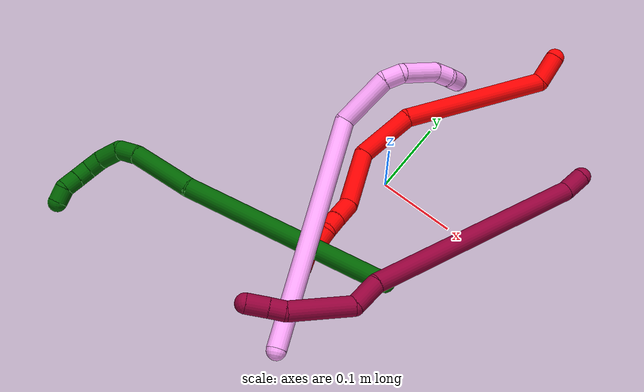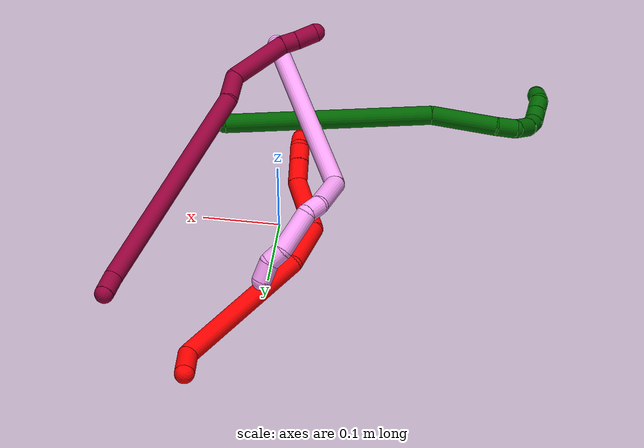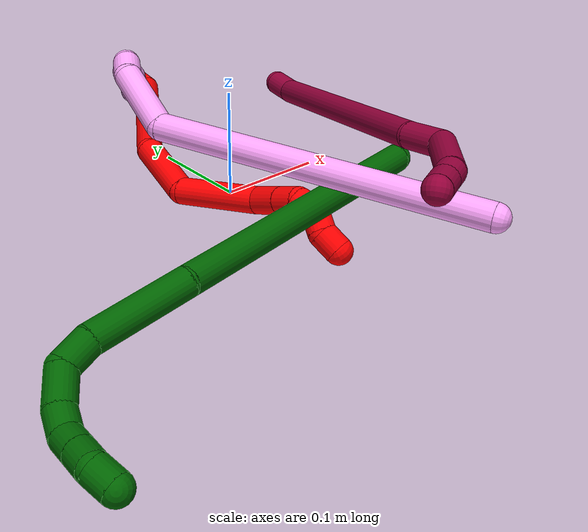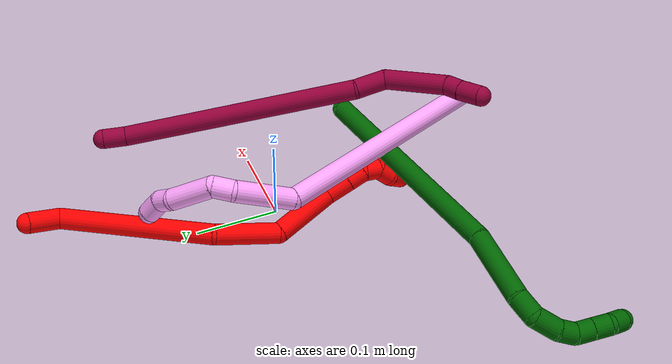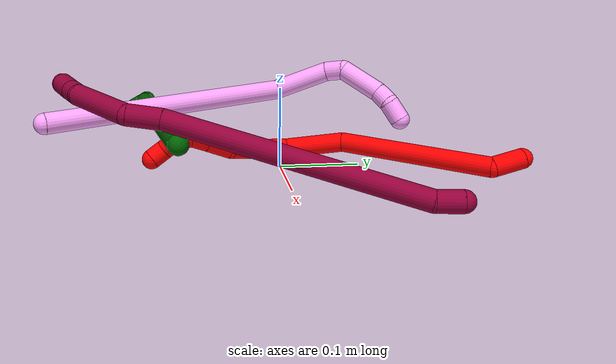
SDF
<sdf version="1.7">
 <world name="default">
  <model name="photoneo_s_sensor">
   <static>1</static>
   <pose>0 0 2 1.57079 1.57079 3.14159</pose>
   <link name="link">
    <inertial><mass>0.1</mass></inertial>
    <sensor name="sensor" type="depth">
     <update_rate>30</update_rate>
     <camera>
      <horizontal_fov>1.22</horizontal_fov>
      <image><width>1920</width><height>1200</height><format>B8G8R8</format></image>
      <clip><near>0.1</near><far>4</far></clip>
      <depth_camera><output>points</output></depth_camera>
     </camera>
     <plugin name="camera_plugin" filename="libgazebo_ros_depth_camera.so">
      <baseline>0.2</baseline>
      <alwaysOn>1</alwaysOn>
      <updateRate>0.0</updateRate>
      <cameraName>camera_ir</cameraName>
      <imageTopicName>/camera/color/image_raw</imageTopicName>
      <cameraInfoTopicName>/camera/color/camera_info</cameraInfoTopicName>
      <depthImageTopicName>/camera/depth/image_raw</depthImageTopicName>
      <depthImageCameraInfoTopicName>/camera/depth/camera_info</depthImageCameraInfoTopicName>
      <pointCloudTopicName>/camera/depth/points</pointCloudTopicName>
      <frameName>fr_optical</frameName>
      <pointCloudCutoff>0.1</pointCloudCutoff>
      <pointCloudCutoffMax>2.0</pointCloudCutoffMax>
      <distortionK1>0</distortionK1>
      <distortionK2>0</distortionK2>
      <distortionK3>0</distortionK3>
      <distortionT1>0</distortionT1>
      <distortionT2>0</distortionT2>
      <CxPrime>0</CxPrime>
      <Cx>0</Cx>
      <Cy>0</Cy>
      <focalLength>0</focalLength>
      <hackBaseline>0</hackBaseline>
     </plugin>
    </sensor>
   </link>
  </model>
  <model name="bin">
   <static>1</static>
   <link name="bottom">
    <collision name="collision-bottom">
     <pose>0 0 -0.01 0 -0 0</pose>
     <geometry><box><size>0.8 0.6 0.02</size></box></geometry>
     <surface>
      <friction><ode><mu>100</mu><mu2>100</mu2></ode></friction>
      <contact><collide_bitmask>65535</collide_bitmask></contact>
     </surface>
    </collision>
   </link>
   <link name="west_wall">
    <collision name="collision-west_wall">
     <pose>-0.41 0 0.1 0 -0 0</pose>
     <geometry><box><size>0.02 0.6 0.2</size></box></geometry>
     <surface>
      <friction><ode><mu>100</mu><mu2>100</mu2></ode></friction>
      <contact><collide_bitmask>65535</collide_bitmask></contact>
     </surface>
    </collision>
   </link>
   <link name="east_wall">
    <collision name="collision-east_wall">
     <pose>0.41 0 0.1 0 -0 0</pose>
     <geometry><box><size>0.02 0.6 0.2</size></box></geometry>
     <surface>
      <friction><ode><mu>100</mu><mu2>100</mu2></ode></friction>
      <contact><collide_bitmask>65535</collide_bitmask></contact>
     </surface>
    </collision>
   </link>
   <link name="south_wall">
    <collision name="collision-south_wall">
     <pose>0 -0.31 0.1 0 -0 0</pose>
     <geometry><box><size>0.8 0.02 0.2</size></box></geometry>
     <surface>
      <friction><ode><mu>100</mu><mu2>100</mu2></ode></friction>
      <contact><collide_bitmask>65535</collide_bitmask></contact>
     </surface>
    </collision>
   </link>
   <link name="north_wall">
    <collision name="collision-north_wall">
     <pose>0 0.31 0.1 0 -0 0</pose>
     <geometry><box><size>0.8 0.02 0.2</size></box></geometry>
     <surface>
      <friction><ode><mu>100</mu><mu2>100</mu2></ode></friction>
      <contact><collide_bitmask>65535</collide_bitmask></contact>
     </surface>
    </collision>
   </link>
  </model>
  <model name="2">
   <static>0</static>
   <link name="2">
    <collision name="collision-cylinder-e_1_1_4">
     <pose>-0.001159 -0.018499 -0.007172 1.94064 -0.058373 -0.085209</pose>
     <geometry><cylinder><radius>0.0125</radius><length>0.039749</length></cylinder></geometry>
     <surface>
      <friction><ode><mu>1.16</mu><mu2>1.16</mu2><slip1>0</slip1><slip2>0</slip2></ode></friction>
      <contact><ode><kp>1e+06</kp><kd>1</kd><max_vel>0</max_vel><min_depth>0.001</min_depth></ode></contact>
     </surface>
    </collision>
    <visual name="visual-cylinder-e_1_1_4">
     <pose>-0.001159 -0.018499 -0.007172 1.94064 -0.058373 -0.085209</pose>
     <geometry><cylinder><radius>0.0125</radius><length>0.039749</length></cylinder></geometry>
     <material><ambient>1 0 0 1</ambient></material>
    </visual>
    <collision name="collision-cylinder-e_2_4_5">
     <pose>-0.047528 -0.119012 0.004844 1.34097 -0.492606 -0.393594</pose>
     <geometry><cylinder><radius>0.0125</radius><length>0.191189</length></cylinder></geometry>
     <surface>
      <friction><ode><mu>1.16</mu><mu2>1.16</mu2><slip1>0</slip1><slip2>0</slip2></ode></friction>
      <contact><ode><kp>1e+06</kp><kd>1</kd><max_vel>0</max_vel><min_depth>0.001</min_depth></ode></contact>
     </surface>
    </collision>
    <visual name="visual-cylinder-e_2_4_5">
     <pose>-0.047528 -0.119012 0.004844 1.34097 -0.492606 -0.393594</pose>
     <geometry><cylinder><radius>0.0125</radius><length>0.191189</length></cylinder></geometry>
     <material><ambient>1 0 0 1</ambient></material>
    </visual>
    <collision name="collision-cylinder-e_3_5_6">
     <pose>-0.102846 -0.237162 0.018524 1.72207 -0.269805 -0.31338</pose>
     <geometry><cylinder><radius>0.0125</radius><length>0.075851</length></cylinder></geometry>
     <surface>
      <friction><ode><mu>1.16</mu><mu2>1.16</mu2><slip1>0</slip1><slip2>0</slip2></ode></friction>
      <contact><ode><kp>1e+06</kp><kd>1</kd><max_vel>0</max_vel><min_depth>0.001</min_depth></ode></contact>
     </surface>
    </collision>
    <visual name="visual-cylinder-e_3_5_6">
     <pose>-0.102846 -0.237162 0.018524 1.72207 -0.269805 -0.31338</pose>
     <geometry><cylinder><radius>0.0125</radius><length>0.075851</length></cylinder></geometry>
     <material><ambient>1 0 0 1</ambient></material>
    </visual>
    <collision name="collision-cylinder-e_4_6_7">
     <pose>-0.097903 -0.30947 0.004521 1.80144 0.384882 0.482248</pose>
     <geometry><cylinder><radius>0.0125</radius><length>0.080177</length></cylinder></geometry>
     <surface>
      <friction><ode><mu>1.16</mu><mu2>1.16</mu2><slip1>0</slip1><slip2>0</slip2></ode></friction>
      <contact><ode><kp>1e+06</kp><kd>1</kd><max_vel>0</max_vel><min_depth>0.001</min_depth></ode></contact>
     </surface>
    </collision>
    <visual name="visual-cylinder-e_4_6_7">
     <pose>-0.097903 -0.30947 0.004521 1.80144 0.384882 0.482248</pose>
     <geometry><cylinder><radius>0.0125</radius><length>0.080177</length></cylinder></geometry>
     <material><ambient>1 0 0 1</ambient></material>
    </visual>
    <collision name="collision-cylinder-e_5_7_8">
     <pose>-0.079674 -0.36049 -0.001798 1.4254 0.208718 0.180546</pose>
     <geometry><cylinder><radius>0.0125</radius><length>0.030679</length></cylinder></geometry>
     <surface>
      <friction><ode><mu>1.16</mu><mu2>1.16</mu2><slip1>0</slip1><slip2>0</slip2></ode></friction>
      <contact><ode><kp>1e+06</kp><kd>1</kd><max_vel>0</max_vel><min_depth>0.001</min_depth></ode></contact>
     </surface>
    </collision>
    <visual name="visual-cylinder-e_5_7_8">
     <pose>-0.079674 -0.36049 -0.001798 1.4254 0.208718 0.180546</pose>
     <geometry><cylinder><radius>0.0125</radius><length>0.030679</length></cylinder></geometry>
     <material><ambient>1 0 0 1</ambient></material>
    </visual>
    <collision name="collision-cylinder-e_6_8_9">
     <pose>-0.074063 -0.38608 0.001737 1.44471 0.220962 0.194899</pose>
     <geometry><cylinder><radius>0.0125</radius><length>0.022195</length></cylinder></geometry>
     <surface>
      <friction><ode><mu>1.16</mu><mu2>1.16</mu2><slip1>0</slip1><slip2>0</slip2></ode></friction>
      <contact><ode><kp>1e+06</kp><kd>1</kd><max_vel>0</max_vel><min_depth>0.001</min_depth></ode></contact>
     </surface>
    </collision>
    <visual name="visual-cylinder-e_6_8_9">
     <pose>-0.074063 -0.38608 0.001737 1.44471 0.220962 0.194899</pose>
     <geometry><cylinder><radius>0.0125</radius><length>0.022195</length></cylinder></geometry>
     <material><ambient>1 0 0 1</ambient></material>
    </visual>
    <collision name="collision-cylinder-e_7_9_10">
     <pose>-0.07218 -0.406458 0.000416 1.8424 -0.054888 -0.072248</pose>
     <geometry><cylinder><radius>0.0125</radius><length>0.020035</length></cylinder></geometry>
     <surface>
      <friction><ode><mu>1.16</mu><mu2>1.16</mu2><slip1>0</slip1><slip2>0</slip2></ode></friction>
      <contact><ode><kp>1e+06</kp><kd>1</kd><max_vel>0</max_vel><min_depth>0.001</min_depth></ode></contact>
     </surface>
    </collision>
    <visual name="visual-cylinder-e_7_9_10">
     <pose>-0.07218 -0.406458 0.000416 1.8424 -0.054888 -0.072248</pose>
     <geometry><cylinder><radius>0.0125</radius><length>0.020035</length></cylinder></geometry>
     <material><ambient>1 0 0 1</ambient></material>
    </visual>
    <collision name="collision-cylinder-e_8_10_11">
     <pose>-0.078014 -0.422589 -0.007746 2.27149 -0.556325 -1.10196</pose>
     <geometry><cylinder><radius>0.0125</radius><length>0.020012</length></cylinder></geometry>
     <surface>
      <friction><ode><mu>1.16</mu><mu2>1.16</mu2><slip1>0</slip1><slip2>0</slip2></ode></friction>
      <contact><ode><kp>1e+06</kp><kd>1</kd><max_vel>0</max_vel><min_depth>0.001</min_depth></ode></contact>
     </surface>
    </collision>
    <visual name="visual-cylinder-e_8_10_11">
     <pose>-0.078014 -0.422589 -0.007746 2.27149 -0.556325 -1.10196</pose>
     <geometry><cylinder><radius>0.0125</radius><length>0.020012</length></cylinder></geometry>
     <material><ambient>1 0 0 1</ambient></material>
    </visual>
    <collision name="collision-cylinder-e_9_11_2">
     <pose>-0.084307 -0.436306 -0.02015 2.33523 -0.100563 -0.234873</pose>
     <geometry><cylinder><radius>0.0125</radius><length>0.020112</length></cylinder></geometry>
     <surface>
      <friction><ode><mu>1.16</mu><mu2>1.16</mu2><slip1>0</slip1><slip2>0</slip2></ode></friction>
      <contact><ode><kp>1e+06</kp><kd>1</kd><max_vel>0</max_vel><min_depth>0.001</min_depth></ode></contact>
     </surface>
    </collision>
    <visual name="visual-cylinder-e_9_11_2">
     <pose>-0.084307 -0.436306 -0.02015 2.33523 -0.100563 -0.234873</pose>
     <geometry><cylinder><radius>0.0125</radius><length>0.020112</length></cylinder></geometry>
     <material><ambient>1 0 0 1</ambient></material>
    </visual>
    <collision name="collision-sphere-2">
     <pose>-0.085317 -0.443527 -0.027075 0 -0 0</pose>
     <geometry><sphere><radius>0.0125</radius></sphere></geometry>
     <surface>
      <friction><ode><mu>1.16</mu><mu2>1.16</mu2><slip1>0</slip1><slip2>0</slip2></ode></friction>
      <contact><ode><kp>1e+06</kp><kd>1</kd><max_vel>0</max_vel><min_depth>0.001</min_depth></ode></contact>
     </surface>
    </collision>
    <visual name="visual-sphere-2">
     <pose>-0.085317 -0.443527 -0.027075 0 -0 0</pose>
     <geometry><sphere><radius>0.0125</radius></sphere></geometry>
     <material><ambient>1 0 0 1</ambient></material>
    </visual>
    <collision name="collision-sphere-11">
     <pose>-0.083298 -0.429084 -0.013225 0 -0 0</pose>
     <geometry><sphere><radius>0.0125</radius></sphere></geometry>
     <surface>
      <friction><ode><mu>1.16</mu><mu2>1.16</mu2><slip1>0</slip1><slip2>0</slip2></ode></friction>
      <contact><ode><kp>1e+06</kp><kd>1</kd><max_vel>0</max_vel><min_depth>0.001</min_depth></ode></contact>
     </surface>
    </collision>
    <visual name="visual-sphere-11">
     <pose>-0.083298 -0.429084 -0.013225 0 -0 0</pose>
     <geometry><sphere><radius>0.0125</radius></sphere></geometry>
     <material><ambient>1 0 0 1</ambient></material>
    </visual>
    <collision name="collision-sphere-10">
     <pose>-0.07273 -0.416093 -0.002268 0 -0 0</pose>
     <geometry><sphere><radius>0.0125</radius></sphere></geometry>
     <surface>
      <friction><ode><mu>1.16</mu><mu2>1.16</mu2><slip1>0</slip1><slip2>0</slip2></ode></friction>
      <contact><ode><kp>1e+06</kp><kd>1</kd><max_vel>0</max_vel><min_depth>0.001</min_depth></ode></contact>
     </surface>
    </collision>
    <visual name="visual-sphere-10">
     <pose>-0.07273 -0.416093 -0.002268 0 -0 0</pose>
     <geometry><sphere><radius>0.0125</radius></sphere></geometry>
     <material><ambient>1 0 0 1</ambient></material>
    </visual>
    <collision name="collision-sphere-9">
     <pose>-0.071631 -0.396822 0.003099 0 -0 0</pose>
     <geometry><sphere><radius>0.0125</radius></sphere></geometry>
     <surface>
      <friction><ode><mu>1.16</mu><mu2>1.16</mu2><slip1>0</slip1><slip2>0</slip2></ode></friction>
      <contact><ode><kp>1e+06</kp><kd>1</kd><max_vel>0</max_vel><min_depth>0.001</min_depth></ode></contact>
     </surface>
    </collision>
    <visual name="visual-sphere-9">
     <pose>-0.071631 -0.396822 0.003099 0 -0 0</pose>
     <geometry><sphere><radius>0.0125</radius></sphere></geometry>
     <material><ambient>1 0 0 1</ambient></material>
    </visual>
    <collision name="collision-sphere-4">
     <pose>-0.002319 -0.036998 -0.014344 0 -0 0</pose>
     <geometry><sphere><radius>0.0125</radius></sphere></geometry>
     <surface>
      <friction><ode><mu>1.16</mu><mu2>1.16</mu2><slip1>0</slip1><slip2>0</slip2></ode></friction>
      <contact><ode><kp>1e+06</kp><kd>1</kd><max_vel>0</max_vel><min_depth>0.001</min_depth></ode></contact>
     </surface>
    </collision>
    <visual name="visual-sphere-4">
     <pose>-0.002319 -0.036998 -0.014344 0 -0 0</pose>
     <geometry><sphere><radius>0.0125</radius></sphere></geometry>
     <material><ambient>1 0 0 1</ambient></material>
    </visual>
    <collision name="collision-sphere-1">
     <geometry><sphere><radius>0.0125</radius></sphere></geometry>
     <surface>
      <friction><ode><mu>1.16</mu><mu2>1.16</mu2><slip1>0</slip1><slip2>0</slip2></ode></friction>
      <contact><ode><kp>1e+06</kp><kd>1</kd><max_vel>0</max_vel><min_depth>0.001</min_depth></ode></contact>
     </surface>
    </collision>
    <visual name="visual-sphere-1">
     <geometry><sphere><radius>0.0125</radius></sphere></geometry>
     <material><ambient>1 0 0 1</ambient></material>
    </visual>
    <collision name="collision-sphere-8">
     <pose>-0.076495 -0.375339 0.000376 0 -0 0</pose>
     <geometry><sphere><radius>0.0125</radius></sphere></geometry>
     <surface>
      <friction><ode><mu>1.16</mu><mu2>1.16</mu2><slip1>0</slip1><slip2>0</slip2></ode></friction>
      <contact><ode><kp>1e+06</kp><kd>1</kd><max_vel>0</max_vel><min_depth>0.001</min_depth></ode></contact>
     </surface>
    </collision>
    <visual name="visual-sphere-8">
     <pose>-0.076495 -0.375339 0.000376 0 -0 0</pose>
     <geometry><sphere><radius>0.0125</radius></sphere></geometry>
     <material><ambient>1 0 0 1</ambient></material>
    </visual>
    <collision name="collision-sphere-5">
     <pose>-0.092737 -0.201026 0.024032 0 -0 0</pose>
     <geometry><sphere><radius>0.0125</radius></sphere></geometry>
     <surface>
      <friction><ode><mu>1.16</mu><mu2>1.16</mu2><slip1>0</slip1><slip2>0</slip2></ode></friction>
      <contact><ode><kp>1e+06</kp><kd>1</kd><max_vel>0</max_vel><min_depth>0.001</min_depth></ode></contact>
     </surface>
    </collision>
    <visual name="visual-sphere-5">
     <pose>-0.092737 -0.201026 0.024032 0 -0 0</pose>
     <geometry><sphere><radius>0.0125</radius></sphere></geometry>
     <material><ambient>1 0 0 1</ambient></material>
    </visual>
    <collision name="collision-sphere-6">
     <pose>-0.112955 -0.273298 0.013015 0 -0 0</pose>
     <geometry><sphere><radius>0.0125</radius></sphere></geometry>
     <surface>
      <friction><ode><mu>1.16</mu><mu2>1.16</mu2><slip1>0</slip1><slip2>0</slip2></ode></friction>
      <contact><ode><kp>1e+06</kp><kd>1</kd><max_vel>0</max_vel><min_depth>0.001</min_depth></ode></contact>
     </surface>
    </collision>
    <visual name="visual-sphere-6">
     <pose>-0.112955 -0.273298 0.013015 0 -0 0</pose>
     <geometry><sphere><radius>0.0125</radius></sphere></geometry>
     <material><ambient>1 0 0 1</ambient></material>
    </visual>
    <collision name="collision-sphere-7">
     <pose>-0.082852 -0.345642 -0.003973 0 -0 0</pose>
     <geometry><sphere><radius>0.0125</radius></sphere></geometry>
     <surface>
      <friction><ode><mu>1.16</mu><mu2>1.16</mu2><slip1>0</slip1><slip2>0</slip2></ode></friction>
      <contact><ode><kp>1e+06</kp><kd>1</kd><max_vel>0</max_vel><min_depth>0.001</min_depth></ode></contact>
     </surface>
    </collision>
    <visual name="visual-sphere-7">
     <pose>-0.082852 -0.345642 -0.003973 0 -0 0</pose>
     <geometry><sphere><radius>0.0125</radius></sphere></geometry>
     <material><ambient>1 0 0 1</ambient></material>
    </visual>
    <inertial>
     <pose>-0.067149 -0.222589 0.00368 0 -0 0</pose>
     <mass>0.5</mass>
     <inertia><ixx>0.00037</ixx><ixy>0</ixy><ixz>0</ixz><iyy>-5e-06</iyy><iyz>0</iyz><izz>0.00087</izz></inertia>
    </inertial>
   </link>
   <pose>0.072074 0.284466 0.020399 -0.143994 -0.503778 0.020752</pose>
  </model>
  <model name="4">
   <static>0</static>
   <link name="4">
    <collision name="collision-cylinder-e_1_1_4">
     <pose>-0.008053 0.013584 0.151103 -0.089661 -0.053033 0.00238</pose>
     <geometry><cylinder><radius>0.0125</radius><length>0.303851</length></cylinder></geometry>
     <surface>
      <friction><ode><mu>1.16</mu><mu2>1.16</mu2><slip1>0</slip1><slip2>0</slip2></ode></friction>
      <contact><ode><kp>1e+06</kp><kd>1</kd><max_vel>0</max_vel><min_depth>0.001</min_depth></ode></contact>
     </surface>
    </collision>
    <visual name="visual-cylinder-e_1_1_4">
     <pose>-0.008053 0.013584 0.151103 -0.089661 -0.053033 0.00238</pose>
     <geometry><cylinder><radius>0.0125</radius><length>0.303851</length></cylinder></geometry>
     <material><ambient>1 0.65098 0.996078 1</ambient></material>
    </visual>
    <collision name="collision-cylinder-e_2_4_5">
     <pose>-0.00258 0.044665 0.330073 -0.560609 0.39003 -0.113607</pose>
     <geometry><cylinder><radius>0.0125</radius><length>0.071154</length></cylinder></geometry>
     <surface>
      <friction><ode><mu>1.16</mu><mu2>1.16</mu2><slip1>0</slip1><slip2>0</slip2></ode></friction>
      <contact><ode><kp>1e+06</kp><kd>1</kd><max_vel>0</max_vel><min_depth>0.001</min_depth></ode></contact>
     </surface>
    </collision>
    <visual name="visual-cylinder-e_2_4_5">
     <pose>-0.00258 0.044665 0.330073 -0.560609 0.39003 -0.113607</pose>
     <geometry><cylinder><radius>0.0125</radius><length>0.071154</length></cylinder></geometry>
     <material><ambient>1 0.65098 0.996078 1</ambient></material>
    </visual>
    <collision name="collision-cylinder-e_3_5_6">
     <pose>0.014028 0.071757 0.36429 -0.986395 0.261564 -0.141163</pose>
     <geometry><cylinder><radius>0.0125</radius><length>0.023823</length></cylinder></geometry>
     <surface>
      <friction><ode><mu>1.16</mu><mu2>1.16</mu2><slip1>0</slip1><slip2>0</slip2></ode></friction>
      <contact><ode><kp>1e+06</kp><kd>1</kd><max_vel>0</max_vel><min_depth>0.001</min_depth></ode></contact>
     </surface>
    </collision>
    <visual name="visual-cylinder-e_3_5_6">
     <pose>0.014028 0.071757 0.36429 -0.986395 0.261564 -0.141163</pose>
     <geometry><cylinder><radius>0.0125</radius><length>0.023823</length></cylinder></geometry>
     <material><ambient>1 0.65098 0.996078 1</ambient></material>
    </visual>
    <collision name="collision-cylinder-e_4_6_7">
     <pose>0.007348 0.104304 0.381659 -1.12312 -0.366054 0.231856</pose>
     <geometry><cylinder><radius>0.0125</radius><length>0.054532</length></cylinder></geometry>
     <surface>
      <friction><ode><mu>1.16</mu><mu2>1.16</mu2><slip1>0</slip1><slip2>0</slip2></ode></friction>
      <contact><ode><kp>1e+06</kp><kd>1</kd><max_vel>0</max_vel><min_depth>0.001</min_depth></ode></contact>
     </surface>
    </collision>
    <visual name="visual-cylinder-e_4_6_7">
     <pose>0.007348 0.104304 0.381659 -1.12312 -0.366054 0.231856</pose>
     <geometry><cylinder><radius>0.0125</radius><length>0.054532</length></cylinder></geometry>
     <material><ambient>1 0.65098 0.996078 1</ambient></material>
    </visual>
    <collision name="collision-cylinder-e_5_7_8">
     <pose>-0.00609 0.13707 0.393221 -1.51566 -0.358134 0.339288</pose>
     <geometry><cylinder><radius>0.0125</radius><length>0.020992</length></cylinder></geometry>
     <surface>
      <friction><ode><mu>1.16</mu><mu2>1.16</mu2><slip1>0</slip1><slip2>0</slip2></ode></friction>
      <contact><ode><kp>1e+06</kp><kd>1</kd><max_vel>0</max_vel><min_depth>0.001</min_depth></ode></contact>
     </surface>
    </collision>
    <visual name="visual-cylinder-e_5_7_8">
     <pose>-0.00609 0.13707 0.393221 -1.51566 -0.358134 0.339288</pose>
     <geometry><cylinder><radius>0.0125</radius><length>0.020992</length></cylinder></geometry>
     <material><ambient>1 0.65098 0.996078 1</ambient></material>
    </visual>
    <collision name="collision-cylinder-e_6_8_2">
     <pose>-0.018841 0.155567 0.396367 -1.2794 -0.785818 0.598274</pose>
     <geometry><cylinder><radius>0.0125</radius><length>0.025648</length></cylinder></geometry>
     <surface>
      <friction><ode><mu>1.16</mu><mu2>1.16</mu2><slip1>0</slip1><slip2>0</slip2></ode></friction>
      <contact><ode><kp>1e+06</kp><kd>1</kd><max_vel>0</max_vel><min_depth>0.001</min_depth></ode></contact>
     </surface>
    </collision>
    <visual name="visual-cylinder-e_6_8_2">
     <pose>-0.018841 0.155567 0.396367 -1.2794 -0.785818 0.598274</pose>
     <geometry><cylinder><radius>0.0125</radius><length>0.025648</length></cylinder></geometry>
     <material><ambient>1 0.65098 0.996078 1</ambient></material>
    </visual>
    <collision name="collision-sphere-2">
     <pose>-0.027913 0.164249 0.398971 0 -0 0</pose>
     <geometry><sphere><radius>0.0125</radius></sphere></geometry>
     <surface>
      <friction><ode><mu>1.16</mu><mu2>1.16</mu2><slip1>0</slip1><slip2>0</slip2></ode></friction>
      <contact><ode><kp>1e+06</kp><kd>1</kd><max_vel>0</max_vel><min_depth>0.001</min_depth></ode></contact>
     </surface>
    </collision>
    <visual name="visual-sphere-2">
     <pose>-0.027913 0.164249 0.398971 0 -0 0</pose>
     <geometry><sphere><radius>0.0125</radius></sphere></geometry>
     <material><ambient>1 0.65098 0.996078 1</ambient></material>
    </visual>
    <collision name="collision-sphere-4">
     <pose>-0.016107 0.027169 0.302205 0 -0 0</pose>
     <geometry><sphere><radius>0.0125</radius></sphere></geometry>
     <surface>
      <friction><ode><mu>1.16</mu><mu2>1.16</mu2><slip1>0</slip1><slip2>0</slip2></ode></friction>
      <contact><ode><kp>1e+06</kp><kd>1</kd><max_vel>0</max_vel><min_depth>0.001</min_depth></ode></contact>
     </surface>
    </collision>
    <visual name="visual-sphere-4">
     <pose>-0.016107 0.027169 0.302205 0 -0 0</pose>
     <geometry><sphere><radius>0.0125</radius></sphere></geometry>
     <material><ambient>1 0.65098 0.996078 1</ambient></material>
    </visual>
    <collision name="collision-sphere-1">
     <geometry><sphere><radius>0.0125</radius></sphere></geometry>
     <surface>
      <friction><ode><mu>1.16</mu><mu2>1.16</mu2><slip1>0</slip1><slip2>0</slip2></ode></friction>
      <contact><ode><kp>1e+06</kp><kd>1</kd><max_vel>0</max_vel><min_depth>0.001</min_depth></ode></contact>
     </surface>
    </collision>
    <visual name="visual-sphere-1">
     <geometry><sphere><radius>0.0125</radius></sphere></geometry>
     <material><ambient>1 0.65098 0.996078 1</ambient></material>
    </visual>
    <collision name="collision-sphere-8">
     <pose>-0.009769 0.146885 0.393763 0 -0 0</pose>
     <geometry><sphere><radius>0.0125</radius></sphere></geometry>
     <surface>
      <friction><ode><mu>1.16</mu><mu2>1.16</mu2><slip1>0</slip1><slip2>0</slip2></ode></friction>
      <contact><ode><kp>1e+06</kp><kd>1</kd><max_vel>0</max_vel><min_depth>0.001</min_depth></ode></contact>
     </surface>
    </collision>
    <visual name="visual-sphere-8">
     <pose>-0.009769 0.146885 0.393763 0 -0 0</pose>
     <geometry><sphere><radius>0.0125</radius></sphere></geometry>
     <material><ambient>1 0.65098 0.996078 1</ambient></material>
    </visual>
    <collision name="collision-sphere-5">
     <pose>0.010947 0.06216 0.357942 0 -0 0</pose>
     <geometry><sphere><radius>0.0125</radius></sphere></geometry>
     <surface>
      <friction><ode><mu>1.16</mu><mu2>1.16</mu2><slip1>0</slip1><slip2>0</slip2></ode></friction>
      <contact><ode><kp>1e+06</kp><kd>1</kd><max_vel>0</max_vel><min_depth>0.001</min_depth></ode></contact>
     </surface>
    </collision>
    <visual name="visual-sphere-5">
     <pose>0.010947 0.06216 0.357942 0 -0 0</pose>
     <geometry><sphere><radius>0.0125</radius></sphere></geometry>
     <material><ambient>1 0.65098 0.996078 1</ambient></material>
    </visual>
    <collision name="collision-sphere-6">
     <pose>0.017108 0.081354 0.370638 0 -0 0</pose>
     <geometry><sphere><radius>0.0125</radius></sphere></geometry>
     <surface>
      <friction><ode><mu>1.16</mu><mu2>1.16</mu2><slip1>0</slip1><slip2>0</slip2></ode></friction>
      <contact><ode><kp>1e+06</kp><kd>1</kd><max_vel>0</max_vel><min_depth>0.001</min_depth></ode></contact>
     </surface>
    </collision>
    <visual name="visual-sphere-6">
     <pose>0.017108 0.081354 0.370638 0 -0 0</pose>
     <geometry><sphere><radius>0.0125</radius></sphere></geometry>
     <material><ambient>1 0.65098 0.996078 1</ambient></material>
    </visual>
    <collision name="collision-sphere-7">
     <pose>-0.002411 0.127255 0.39268 0 -0 0</pose>
     <geometry><sphere><radius>0.0125</radius></sphere></geometry>
     <surface>
      <friction><ode><mu>1.16</mu><mu2>1.16</mu2><slip1>0</slip1><slip2>0</slip2></ode></friction>
      <contact><ode><kp>1e+06</kp><kd>1</kd><max_vel>0</max_vel><min_depth>0.001</min_depth></ode></contact>
     </surface>
    </collision>
    <visual name="visual-sphere-7">
     <pose>-0.002411 0.127255 0.39268 0 -0 0</pose>
     <geometry><sphere><radius>0.0125</radius></sphere></geometry>
     <material><ambient>1 0.65098 0.996078 1</ambient></material>
    </visual>
    <inertial>
     <pose>-0.005013 0.043141 0.234621 0 -0 0</pose>
     <mass>0.5</mass>
     <inertia><ixx>0.0024</ixx><ixy>0</ixy><ixz>0</ixz><iyy>0.002399</iyy><iyz>0</iyz><izz>-9.4e-05</izz></inertia>
    </inertial>
   </link>
   <pose>0.04348 -0.275387 0.071562 -1.0725 -1.3168 -0.015001</pose>
  </model>
  <model name="6">
   <static>0</static>
   <link name="6">
    <collision name="collision-cylinder-e_1_1_4">
     <pose>-0.112915 -0.0233 0.073474 0.307092 -0.971819 -0.163114</pose>
     <geometry><cylinder><radius>0.0125</radius><length>0.273431</length></cylinder></geometry>
     <surface>
      <friction><ode><mu>1.16</mu><mu2>1.16</mu2><slip1>0</slip1><slip2>0</slip2></ode></friction>
      <contact><ode><kp>1e+06</kp><kd>1</kd><max_vel>0</max_vel><min_depth>0.001</min_depth></ode></contact>
     </surface>
    </collision>
    <visual name="visual-cylinder-e_1_1_4">
     <pose>-0.112915 -0.0233 0.073474 0.307092 -0.971819 -0.163114</pose>
     <geometry><cylinder><radius>0.0125</radius><length>0.273431</length></cylinder></geometry>
     <material><ambient>0 0.392157 0.003922 1</ambient></material>
    </visual>
    <collision name="collision-cylinder-e_2_4_5">
     <pose>-0.265825 -0.054964 0.16208 0.50491 -1.16276 -0.335837</pose>
     <geometry><cylinder><radius>0.0125</radius><length>0.087145</length></cylinder></geometry>
     <surface>
      <friction><ode><mu>1.16</mu><mu2>1.16</mu2><slip1>0</slip1><slip2>0</slip2></ode></friction>
      <contact><ode><kp>1e+06</kp><kd>1</kd><max_vel>0</max_vel><min_depth>0.001</min_depth></ode></contact>
     </surface>
    </collision>
    <visual name="visual-cylinder-e_2_4_5">
     <pose>-0.265825 -0.054964 0.16208 0.50491 -1.16276 -0.335837</pose>
     <geometry><cylinder><radius>0.0125</radius><length>0.087145</length></cylinder></geometry>
     <material><ambient>0 0.392157 0.003922 1</ambient></material>
    </visual>
    <collision name="collision-cylinder-e_3_5_6">
     <pose>-0.317078 -0.069047 0.182779 0.798917 -0.95413 -0.429677</pose>
     <geometry><cylinder><radius>0.0125</radius><length>0.027598</length></cylinder></geometry>
     <surface>
      <friction><ode><mu>1.16</mu><mu2>1.16</mu2><slip1>0</slip1><slip2>0</slip2></ode></friction>
      <contact><ode><kp>1e+06</kp><kd>1</kd><max_vel>0</max_vel><min_depth>0.001</min_depth></ode></contact>
     </surface>
    </collision>
    <visual name="visual-cylinder-e_3_5_6">
     <pose>-0.317078 -0.069047 0.182779 0.798917 -0.95413 -0.429677</pose>
     <geometry><cylinder><radius>0.0125</radius><length>0.027598</length></cylinder></geometry>
     <material><ambient>0 0.392157 0.003922 1</ambient></material>
    </visual>
    <collision name="collision-cylinder-e_4_6_7">
     <pose>-0.333125 -0.087355 0.195449 1.05708 -0.319922 -0.187877</pose>
     <geometry><cylinder><radius>0.0125</radius><length>0.030457</length></cylinder></geometry>
     <surface>
      <friction><ode><mu>1.16</mu><mu2>1.16</mu2><slip1>0</slip1><slip2>0</slip2></ode></friction>
      <contact><ode><kp>1e+06</kp><kd>1</kd><max_vel>0</max_vel><min_depth>0.001</min_depth></ode></contact>
     </surface>
    </collision>
    <visual name="visual-cylinder-e_4_6_7">
     <pose>-0.333125 -0.087355 0.195449 1.05708 -0.319922 -0.187877</pose>
     <geometry><cylinder><radius>0.0125</radius><length>0.030457</length></cylinder></geometry>
     <material><ambient>0 0.392157 0.003922 1</ambient></material>
    </visual>
    <collision name="collision-cylinder-e_5_7_8">
     <pose>-0.33832 -0.108519 0.208553 0.960193 -0.038777 -0.020194</pose>
     <geometry><cylinder><radius>0.0125</radius><length>0.020945</length></cylinder></geometry>
     <surface>
      <friction><ode><mu>1.16</mu><mu2>1.16</mu2><slip1>0</slip1><slip2>0</slip2></ode></friction>
      <contact><ode><kp>1e+06</kp><kd>1</kd><max_vel>0</max_vel><min_depth>0.001</min_depth></ode></contact>
     </surface>
    </collision>
    <visual name="visual-cylinder-e_5_7_8">
     <pose>-0.33832 -0.108519 0.208553 0.960193 -0.038777 -0.020194</pose>
     <geometry><cylinder><radius>0.0125</radius><length>0.020945</length></cylinder></geometry>
     <material><ambient>0 0.392157 0.003922 1</ambient></material>
    </visual>
    <collision name="collision-cylinder-e_6_8_9">
     <pose>-0.335984 -0.12245 0.222619 0.586329 0.275896 0.083766</pose>
     <geometry><cylinder><radius>0.0125</radius><length>0.020128</length></cylinder></geometry>
     <surface>
      <friction><ode><mu>1.16</mu><mu2>1.16</mu2><slip1>0</slip1><slip2>0</slip2></ode></friction>
      <contact><ode><kp>1e+06</kp><kd>1</kd><max_vel>0</max_vel><min_depth>0.001</min_depth></ode></contact>
     </surface>
    </collision>
    <visual name="visual-cylinder-e_6_8_9">
     <pose>-0.335984 -0.12245 0.222619 0.586329 0.275896 0.083766</pose>
     <geometry><cylinder><radius>0.0125</radius><length>0.020128</length></cylinder></geometry>
     <material><ambient>0 0.392157 0.003922 1</ambient></material>
    </visual>
    <collision name="collision-cylinder-e_7_9_10">
     <pose>-0.33058 -0.133074 0.238812 0.57491 0.268341 0.07977</pose>
     <geometry><cylinder><radius>0.0125</radius><length>0.020089</length></cylinder></geometry>
     <surface>
      <friction><ode><mu>1.16</mu><mu2>1.16</mu2><slip1>0</slip1><slip2>0</slip2></ode></friction>
      <contact><ode><kp>1e+06</kp><kd>1</kd><max_vel>0</max_vel><min_depth>0.001</min_depth></ode></contact>
     </surface>
    </collision>
    <visual name="visual-cylinder-e_7_9_10">
     <pose>-0.33058 -0.133074 0.238812 0.57491 0.268341 0.07977</pose>
     <geometry><cylinder><radius>0.0125</radius><length>0.020089</length></cylinder></geometry>
     <material><ambient>0 0.392157 0.003922 1</ambient></material>
    </visual>
    <collision name="collision-cylinder-e_8_10_2">
     <pose>-0.323174 -0.146146 0.251261 1.06528 0.488655 0.291831</pose>
     <geometry><cylinder><radius>0.0125</radius><length>0.020208</length></cylinder></geometry>
     <surface>
      <friction><ode><mu>1.16</mu><mu2>1.16</mu2><slip1>0</slip1><slip2>0</slip2></ode></friction>
      <contact><ode><kp>1e+06</kp><kd>1</kd><max_vel>0</max_vel><min_depth>0.001</min_depth></ode></contact>
     </surface>
    </collision>
    <visual name="visual-cylinder-e_8_10_2">
     <pose>-0.323174 -0.146146 0.251261 1.06528 0.488655 0.291831</pose>
     <geometry><cylinder><radius>0.0125</radius><length>0.020208</length></cylinder></geometry>
     <material><ambient>0 0.392157 0.003922 1</ambient></material>
    </visual>
    <collision name="collision-sphere-2">
     <pose>-0.318431 -0.153952 0.255581 0 -0 0</pose>
     <geometry><sphere><radius>0.0125</radius></sphere></geometry>
     <surface>
      <friction><ode><mu>1.16</mu><mu2>1.16</mu2><slip1>0</slip1><slip2>0</slip2></ode></friction>
      <contact><ode><kp>1e+06</kp><kd>1</kd><max_vel>0</max_vel><min_depth>0.001</min_depth></ode></contact>
     </surface>
    </collision>
    <visual name="visual-sphere-2">
     <pose>-0.318431 -0.153952 0.255581 0 -0 0</pose>
     <geometry><sphere><radius>0.0125</radius></sphere></geometry>
     <material><ambient>0 0.392157 0.003922 1</ambient></material>
    </visual>
    <collision name="collision-sphere-10">
     <pose>-0.327917 -0.138341 0.24694 0 -0 0</pose>
     <geometry><sphere><radius>0.0125</radius></sphere></geometry>
     <surface>
      <friction><ode><mu>1.16</mu><mu2>1.16</mu2><slip1>0</slip1><slip2>0</slip2></ode></friction>
      <contact><ode><kp>1e+06</kp><kd>1</kd><max_vel>0</max_vel><min_depth>0.001</min_depth></ode></contact>
     </surface>
    </collision>
    <visual name="visual-sphere-10">
     <pose>-0.327917 -0.138341 0.24694 0 -0 0</pose>
     <geometry><sphere><radius>0.0125</radius></sphere></geometry>
     <material><ambient>0 0.392157 0.003922 1</ambient></material>
    </visual>
    <collision name="collision-sphere-9">
     <pose>-0.333243 -0.127808 0.230684 0 -0 0</pose>
     <geometry><sphere><radius>0.0125</radius></sphere></geometry>
     <surface>
      <friction><ode><mu>1.16</mu><mu2>1.16</mu2><slip1>0</slip1><slip2>0</slip2></ode></friction>
      <contact><ode><kp>1e+06</kp><kd>1</kd><max_vel>0</max_vel><min_depth>0.001</min_depth></ode></contact>
     </surface>
    </collision>
    <visual name="visual-sphere-9">
     <pose>-0.333243 -0.127808 0.230684 0 -0 0</pose>
     <geometry><sphere><radius>0.0125</radius></sphere></geometry>
     <material><ambient>0 0.392157 0.003922 1</ambient></material>
    </visual>
    <collision name="collision-sphere-4">
     <pose>-0.22583 -0.046601 0.146948 0 -0 0</pose>
     <geometry><sphere><radius>0.0125</radius></sphere></geometry>
     <surface>
      <friction><ode><mu>1.16</mu><mu2>1.16</mu2><slip1>0</slip1><slip2>0</slip2></ode></friction>
      <contact><ode><kp>1e+06</kp><kd>1</kd><max_vel>0</max_vel><min_depth>0.001</min_depth></ode></contact>
     </surface>
    </collision>
    <visual name="visual-sphere-4">
     <pose>-0.22583 -0.046601 0.146948 0 -0 0</pose>
     <geometry><sphere><radius>0.0125</radius></sphere></geometry>
     <material><ambient>0 0.392157 0.003922 1</ambient></material>
    </visual>
    <collision name="collision-sphere-1">
     <geometry><sphere><radius>0.0125</radius></sphere></geometry>
     <surface>
      <friction><ode><mu>1.16</mu><mu2>1.16</mu2><slip1>0</slip1><slip2>0</slip2></ode></friction>
      <contact><ode><kp>1e+06</kp><kd>1</kd><max_vel>0</max_vel><min_depth>0.001</min_depth></ode></contact>
     </surface>
    </collision>
    <visual name="visual-sphere-1">
     <geometry><sphere><radius>0.0125</radius></sphere></geometry>
     <material><ambient>0 0.392157 0.003922 1</ambient></material>
    </visual>
    <collision name="collision-sphere-8">
     <pose>-0.338726 -0.117093 0.214553 0 -0 0</pose>
     <geometry><sphere><radius>0.0125</radius></sphere></geometry>
     <surface>
      <friction><ode><mu>1.16</mu><mu2>1.16</mu2><slip1>0</slip1><slip2>0</slip2></ode></friction>
      <contact><ode><kp>1e+06</kp><kd>1</kd><max_vel>0</max_vel><min_depth>0.001</min_depth></ode></contact>
     </surface>
    </collision>
    <visual name="visual-sphere-8">
     <pose>-0.338726 -0.117093 0.214553 0 -0 0</pose>
     <geometry><sphere><radius>0.0125</radius></sphere></geometry>
     <material><ambient>0 0.392157 0.003922 1</ambient></material>
    </visual>
    <collision name="collision-sphere-5">
     <pose>-0.305821 -0.063328 0.177213 0 -0 0</pose>
     <geometry><sphere><radius>0.0125</radius></sphere></geometry>
     <surface>
      <friction><ode><mu>1.16</mu><mu2>1.16</mu2><slip1>0</slip1><slip2>0</slip2></ode></friction>
      <contact><ode><kp>1e+06</kp><kd>1</kd><max_vel>0</max_vel><min_depth>0.001</min_depth></ode></contact>
     </surface>
    </collision>
    <visual name="visual-sphere-5">
     <pose>-0.305821 -0.063328 0.177213 0 -0 0</pose>
     <geometry><sphere><radius>0.0125</radius></sphere></geometry>
     <material><ambient>0 0.392157 0.003922 1</ambient></material>
    </visual>
    <collision name="collision-sphere-6">
     <pose>-0.328335 -0.074765 0.188345 0 -0 0</pose>
     <geometry><sphere><radius>0.0125</radius></sphere></geometry>
     <surface>
      <friction><ode><mu>1.16</mu><mu2>1.16</mu2><slip1>0</slip1><slip2>0</slip2></ode></friction>
      <contact><ode><kp>1e+06</kp><kd>1</kd><max_vel>0</max_vel><min_depth>0.001</min_depth></ode></contact>
     </surface>
    </collision>
    <visual name="visual-sphere-6">
     <pose>-0.328335 -0.074765 0.188345 0 -0 0</pose>
     <geometry><sphere><radius>0.0125</radius></sphere></geometry>
     <material><ambient>0 0.392157 0.003922 1</ambient></material>
    </visual>
    <collision name="collision-sphere-7">
     <pose>-0.337914 -0.099945 0.202553 0 -0 0</pose>
     <geometry><sphere><radius>0.0125</radius></sphere></geometry>
     <surface>
      <friction><ode><mu>1.16</mu><mu2>1.16</mu2><slip1>0</slip1><slip2>0</slip2></ode></friction>
      <contact><ode><kp>1e+06</kp><kd>1</kd><max_vel>0</max_vel><min_depth>0.001</min_depth></ode></contact>
     </surface>
    </collision>
    <visual name="visual-sphere-7">
     <pose>-0.337914 -0.099945 0.202553 0 -0 0</pose>
     <geometry><sphere><radius>0.0125</radius></sphere></geometry>
     <material><ambient>0 0.392157 0.003922 1</ambient></material>
    </visual>
    <inertial>
     <pose>-0.199913 -0.052182 0.127871 0 -0 0</pose>
     <mass>0.5</mass>
     <inertia>
      <ixx>0.000796</ixx>
      <ixy>0</ixy>
      <ixz>0</ixz>
      <iyy>0.00157</iyy>
      <iyz>0</iyz>
      <izz>0.001803</izz>
     </inertia>
    </inertial>
   </link>
   <pose>0.089963 -0.125517 0.054132 0.959924 -0.19827 -0.380429</pose>
  </model>
  <model name="8">
   <static>0</static>
   <link name="8">
    <collision name="collision-cylinder-e_1_1_4">
     <pose>0.000119 -0.013364 -0.006427 2.01903 0.008024 0.012762</pose>
     <geometry><cylinder><radius>0.0125</radius><length>0.02966</length></cylinder></geometry>
     <surface>
      <friction><ode><mu>1.16</mu><mu2>1.16</mu2><slip1>0</slip1><slip2>0</slip2></ode></friction>
      <contact><ode><kp>1e+06</kp><kd>1</kd><max_vel>0</max_vel><min_depth>0.001</min_depth></ode></contact>
     </surface>
    </collision>
    <visual name="visual-cylinder-e_1_1_4">
     <pose>0.000119 -0.013364 -0.006427 2.01903 0.008024 0.012762</pose>
     <geometry><cylinder><radius>0.0125</radius><length>0.02966</length></cylinder></geometry>
     <material><ambient>0.584314 0 0.227451 1</ambient></material>
    </visual>
    <collision name="collision-cylinder-e_2_4_5">
     <pose>-0.040282 -0.164121 -0.058532 1.89176 -0.272879 -0.376153</pose>
     <geometry><cylinder><radius>0.0125</radius><length>0.3007</length></cylinder></geometry>
     <surface>
      <friction><ode><mu>1.16</mu><mu2>1.16</mu2><slip1>0</slip1><slip2>0</slip2></ode></friction>
      <contact><ode><kp>1e+06</kp><kd>1</kd><max_vel>0</max_vel><min_depth>0.001</min_depth></ode></contact>
     </surface>
    </collision>
    <visual name="visual-cylinder-e_2_4_5">
     <pose>-0.040282 -0.164121 -0.058532 1.89176 -0.272879 -0.376153</pose>
     <geometry><cylinder><radius>0.0125</radius><length>0.3007</length></cylinder></geometry>
     <material><ambient>0.584314 0 0.227451 1</ambient></material>
    </visual>
    <collision name="collision-cylinder-e_3_5_6">
     <pose>-0.080146 -0.320733 -0.109132 1.82151 0.033053 0.042582</pose>
     <geometry><cylinder><radius>0.0125</radius><length>0.039701</length></cylinder></geometry>
     <surface>
      <friction><ode><mu>1.16</mu><mu2>1.16</mu2><slip1>0</slip1><slip2>0</slip2></ode></friction>
      <contact><ode><kp>1e+06</kp><kd>1</kd><max_vel>0</max_vel><min_depth>0.001</min_depth></ode></contact>
     </surface>
    </collision>
    <visual name="visual-cylinder-e_3_5_6">
     <pose>-0.080146 -0.320733 -0.109132 1.82151 0.033053 0.042582</pose>
     <geometry><cylinder><radius>0.0125</radius><length>0.039701</length></cylinder></geometry>
     <material><ambient>0.584314 0 0.227451 1</ambient></material>
    </visual>
    <collision name="collision-cylinder-e_4_6_7">
     <pose>-0.102132 -0.367989 -0.13283 2.1609 -0.590994 -1.03649</pose>
     <geometry><cylinder><radius>0.0125</radius><length>0.081271</length></cylinder></geometry>
     <surface>
      <friction><ode><mu>1.16</mu><mu2>1.16</mu2><slip1>0</slip1><slip2>0</slip2></ode></friction>
      <contact><ode><kp>1e+06</kp><kd>1</kd><max_vel>0</max_vel><min_depth>0.001</min_depth></ode></contact>
     </surface>
    </collision>
    <visual name="visual-cylinder-e_4_6_7">
     <pose>-0.102132 -0.367989 -0.13283 2.1609 -0.590994 -1.03649</pose>
     <geometry><cylinder><radius>0.0125</radius><length>0.081271</length></cylinder></geometry>
     <material><ambient>0.584314 0 0.227451 1</ambient></material>
    </visual>
    <collision name="collision-cylinder-e_5_7_8">
     <pose>-0.132278 -0.40033 -0.157023 2.47016 -0.826032 -1.79672</pose>
     <geometry><cylinder><radius>0.0125</radius><length>0.020414</length></cylinder></geometry>
     <surface>
      <friction><ode><mu>1.16</mu><mu2>1.16</mu2><slip1>0</slip1><slip2>0</slip2></ode></friction>
      <contact><ode><kp>1e+06</kp><kd>1</kd><max_vel>0</max_vel><min_depth>0.001</min_depth></ode></contact>
     </surface>
    </collision>
    <visual name="visual-cylinder-e_5_7_8">
     <pose>-0.132278 -0.40033 -0.157023 2.47016 -0.826032 -1.79672</pose>
     <geometry><cylinder><radius>0.0125</radius><length>0.020414</length></cylinder></geometry>
     <material><ambient>0.584314 0 0.227451 1</ambient></material>
    </visual>
    <collision name="collision-cylinder-e_6_8_2">
     <pose>-0.150182 -0.411452 -0.169145 2.34784 -0.827296 -1.61707</pose>
     <geometry><cylinder><radius>0.0125</radius><length>0.028255</length></cylinder></geometry>
     <surface>
      <friction><ode><mu>1.16</mu><mu2>1.16</mu2><slip1>0</slip1><slip2>0</slip2></ode></friction>
      <contact><ode><kp>1e+06</kp><kd>1</kd><max_vel>0</max_vel><min_depth>0.001</min_depth></ode></contact>
     </surface>
    </collision>
    <visual name="visual-cylinder-e_6_8_2">
     <pose>-0.150182 -0.411452 -0.169145 2.34784 -0.827296 -1.61707</pose>
     <geometry><cylinder><radius>0.0125</radius><length>0.028255</length></cylinder></geometry>
     <material><ambient>0.584314 0 0.227451 1</ambient></material>
    </visual>
    <collision name="collision-sphere-2">
     <pose>-0.160581 -0.418269 -0.17585 0 -0 0</pose>
     <geometry><sphere><radius>0.0125</radius></sphere></geometry>
     <surface>
      <friction><ode><mu>1.16</mu><mu2>1.16</mu2><slip1>0</slip1><slip2>0</slip2></ode></friction>
      <contact><ode><kp>1e+06</kp><kd>1</kd><max_vel>0</max_vel><min_depth>0.001</min_depth></ode></contact>
     </surface>
    </collision>
    <visual name="visual-sphere-2">
     <pose>-0.160581 -0.418269 -0.17585 0 -0 0</pose>
     <geometry><sphere><radius>0.0125</radius></sphere></geometry>
     <material><ambient>0.584314 0 0.227451 1</ambient></material>
    </visual>
    <collision name="collision-sphere-4">
     <pose>0.000238 -0.026729 -0.012853 0 -0 0</pose>
     <geometry><sphere><radius>0.0125</radius></sphere></geometry>
     <surface>
      <friction><ode><mu>1.16</mu><mu2>1.16</mu2><slip1>0</slip1><slip2>0</slip2></ode></friction>
      <contact><ode><kp>1e+06</kp><kd>1</kd><max_vel>0</max_vel><min_depth>0.001</min_depth></ode></contact>
     </surface>
    </collision>
    <visual name="visual-sphere-4">
     <pose>0.000238 -0.026729 -0.012853 0 -0 0</pose>
     <geometry><sphere><radius>0.0125</radius></sphere></geometry>
     <material><ambient>0.584314 0 0.227451 1</ambient></material>
    </visual>
    <collision name="collision-sphere-1">
     <geometry><sphere><radius>0.0125</radius></sphere></geometry>
     <surface>
      <friction><ode><mu>1.16</mu><mu2>1.16</mu2><slip1>0</slip1><slip2>0</slip2></ode></friction>
      <contact><ode><kp>1e+06</kp><kd>1</kd><max_vel>0</max_vel><min_depth>0.001</min_depth></ode></contact>
     </surface>
    </collision>
    <visual name="visual-sphere-1">
     <geometry><sphere><radius>0.0125</radius></sphere></geometry>
     <material><ambient>0.584314 0 0.227451 1</ambient></material>
    </visual>
    <collision name="collision-sphere-8">
     <pose>-0.139782 -0.404634 -0.16244 0 -0 0</pose>
     <geometry><sphere><radius>0.0125</radius></sphere></geometry>
     <surface>
      <friction><ode><mu>1.16</mu><mu2>1.16</mu2><slip1>0</slip1><slip2>0</slip2></ode></friction>
      <contact><ode><kp>1e+06</kp><kd>1</kd><max_vel>0</max_vel><min_depth>0.001</min_depth></ode></contact>
     </surface>
    </collision>
    <visual name="visual-sphere-8">
     <pose>-0.139782 -0.404634 -0.16244 0 -0 0</pose>
     <geometry><sphere><radius>0.0125</radius></sphere></geometry>
     <material><ambient>0.584314 0 0.227451 1</ambient></material>
    </visual>
    <collision name="collision-sphere-5">
     <pose>-0.080802 -0.301514 -0.10421 0 -0 0</pose>
     <geometry><sphere><radius>0.0125</radius></sphere></geometry>
     <surface>
      <friction><ode><mu>1.16</mu><mu2>1.16</mu2><slip1>0</slip1><slip2>0</slip2></ode></friction>
      <contact><ode><kp>1e+06</kp><kd>1</kd><max_vel>0</max_vel><min_depth>0.001</min_depth></ode></contact>
     </surface>
    </collision>
    <visual name="visual-sphere-5">
     <pose>-0.080802 -0.301514 -0.10421 0 -0 0</pose>
     <geometry><sphere><radius>0.0125</radius></sphere></geometry>
     <material><ambient>0.584314 0 0.227451 1</ambient></material>
    </visual>
    <collision name="collision-sphere-6">
     <pose>-0.07949 -0.339952 -0.114054 0 -0 0</pose>
     <geometry><sphere><radius>0.0125</radius></sphere></geometry>
     <surface>
      <friction><ode><mu>1.16</mu><mu2>1.16</mu2><slip1>0</slip1><slip2>0</slip2></ode></friction>
      <contact><ode><kp>1e+06</kp><kd>1</kd><max_vel>0</max_vel><min_depth>0.001</min_depth></ode></contact>
     </surface>
    </collision>
    <visual name="visual-sphere-6">
     <pose>-0.07949 -0.339952 -0.114054 0 -0 0</pose>
     <geometry><sphere><radius>0.0125</radius></sphere></geometry>
     <material><ambient>0.584314 0 0.227451 1</ambient></material>
    </visual>
    <collision name="collision-sphere-7">
     <pose>-0.124773 -0.396026 -0.151607 0 -0 0</pose>
     <geometry><sphere><radius>0.0125</radius></sphere></geometry>
     <surface>
      <friction><ode><mu>1.16</mu><mu2>1.16</mu2><slip1>0</slip1><slip2>0</slip2></ode></friction>
      <contact><ode><kp>1e+06</kp><kd>1</kd><max_vel>0</max_vel><min_depth>0.001</min_depth></ode></contact>
     </surface>
    </collision>
    <visual name="visual-sphere-7">
     <pose>-0.124773 -0.396026 -0.151607 0 -0 0</pose>
     <geometry><sphere><radius>0.0125</radius></sphere></geometry>
     <material><ambient>0.584314 0 0.227451 1</ambient></material>
    </visual>
    <inertial>
     <pose>-0.06107 -0.224371 -0.081807 0 -0 0</pose>
     <mass>0.5</mass>
     <inertia>
      <ixx>0.001215</ixx>
      <ixy>0</ixy>
      <ixz>0</ixz>
      <iyy>-0.001325</iyy>
      <iyz>0</iyz>
      <izz>0.002756</izz>
     </inertia>
    </inertial>
   </link>
   <pose>0.196152 0.161033 0.01282 -0.440141 0.514756 -0.17725</pose>
  </model>
 </world>
</sdf>
